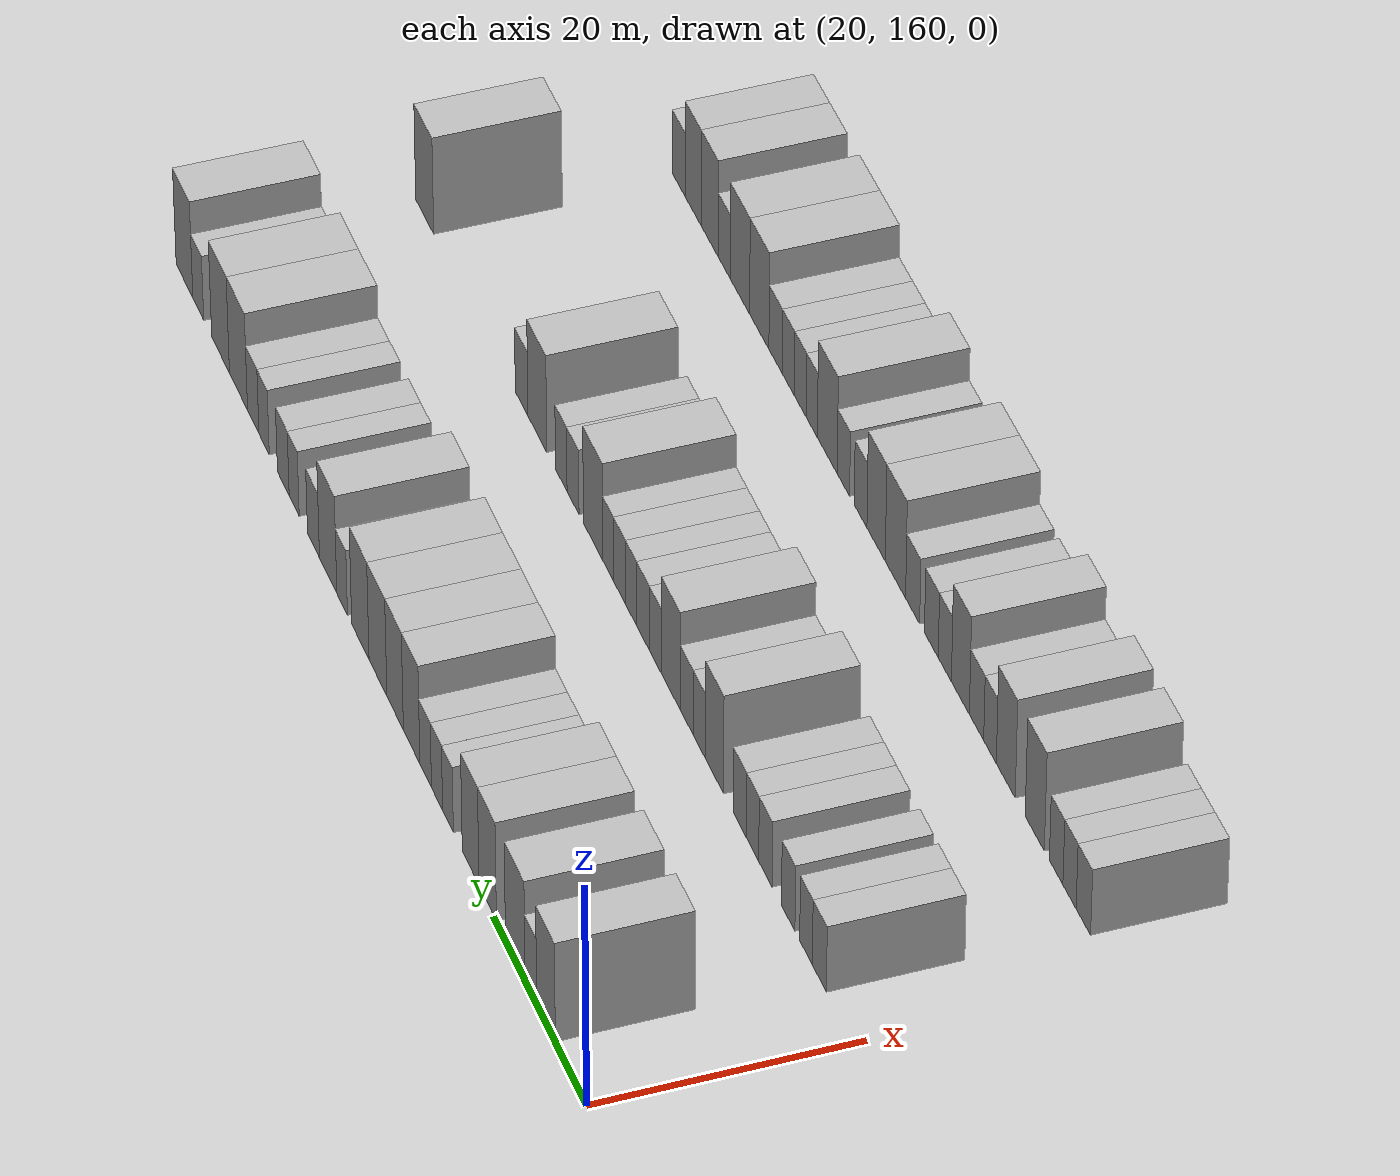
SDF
<sdf version="1.6">
 <world name="default">
  <model name="building_133">
   <static>1</static>
   <pose>25.0000 168.7164 0 0.000000 0.000000 0.000000</pose>
   <link name="link">
    <pose>0 0 4.50 0 0 0</pose>
    <collision name="collision"><geometry><box><size>10.0000 4.0114 9.0000</size></box></geometry></collision>
    <visual name="visual">
     <cast_shadows>0</cast_shadows>
     <geometry><box><size>10.0000 4.0114 9.0000</size></box></geometry>
     <material>
      <script>
       <uri>model://HANNAS_wall/materials/scripts</uri>
       <uri>model://HANNAS_wall/materials/textures</uri>
       <name>vrc/HANNAS_wall</name>
      </script>
     </material>
    </visual>
   </link>
  </model>
  <model name="building_134">
   <static>1</static>
   <pose>25.0000 171.9844 0 0.000000 0.000000 0.000000</pose>
   <link name="link">
    <pose>0 0 3.00 0 0 0</pose>
    <collision name="collision"><geometry><box><size>10.0000 2.5245 6.0000</size></box></geometry></collision>
    <visual name="visual">
     <cast_shadows>0</cast_shadows>
     <geometry><box><size>10.0000 2.5245 6.0000</size></box></geometry>
     <material>
      <script>
       <uri>model://HANNAS_wall/materials/scripts</uri>
       <uri>model://HANNAS_wall/materials/textures</uri>
       <name>vrc/HANNAS_wall</name>
      </script>
     </material>
    </visual>
   </link>
  </model>
  <model name="building_135">
   <static>1</static>
   <pose>25.0000 175.3926 0 0.000000 0.000000 0.000000</pose>
   <link name="link">
    <pose>0 0 4.50 0 0 0</pose>
    <collision name="collision"><geometry><box><size>10.0000 4.2920 9.0000</size></box></geometry></collision>
    <visual name="visual">
     <cast_shadows>0</cast_shadows>
     <geometry><box><size>10.0000 4.2920 9.0000</size></box></geometry>
     <material>
      <script>
       <uri>model://HANNAS_wall/materials/scripts</uri>
       <uri>model://HANNAS_wall/materials/textures</uri>
       <name>vrc/HANNAS_wall</name>
      </script>
     </material>
    </visual>
   </link>
  </model>
  <model name="building_136">
   <static>1</static>
   <pose>25.0000 181.4640 0 0.000000 0.000000 0.000000</pose>
   <link name="link">
    <pose>0 0 4.50 0 0 0</pose>
    <collision name="collision"><geometry><box><size>10.0000 3.8508 9.0000</size></box></geometry></collision>
    <visual name="visual">
     <cast_shadows>0</cast_shadows>
     <geometry><box><size>10.0000 3.8508 9.0000</size></box></geometry>
     <material>
      <script>
       <uri>model://HANNAS_wall/materials/scripts</uri>
       <uri>model://HANNAS_wall/materials/textures</uri>
       <name>vrc/HANNAS_wall</name>
      </script>
     </material>
    </visual>
   </link>
  </model>
  <model name="building_137">
   <static>1</static>
   <pose>25.0000 185.2584 0 0.000000 0.000000 0.000000</pose>
   <link name="link">
    <pose>0 0 4.50 0 0 0</pose>
    <collision name="collision"><geometry><box><size>10.0000 3.7382 9.0000</size></box></geometry></collision>
    <visual name="visual">
     <cast_shadows>0</cast_shadows>
     <geometry><box><size>10.0000 3.7382 9.0000</size></box></geometry>
     <material>
      <script>
       <uri>model://HANNAS_wall/materials/scripts</uri>
       <uri>model://HANNAS_wall/materials/textures</uri>
       <name>vrc/HANNAS_wall</name>
      </script>
     </material>
    </visual>
   </link>
  </model>
  <model name="building_138">
   <static>1</static>
   <pose>25.0000 190.3357 0 0.000000 0.000000 0.000000</pose>
   <link name="link">
    <pose>0 0 3.00 0 0 0</pose>
    <collision name="collision"><geometry><box><size>10.0000 2.4163 6.0000</size></box></geometry></collision>
    <visual name="visual">
     <cast_shadows>0</cast_shadows>
     <geometry><box><size>10.0000 2.4163 6.0000</size></box></geometry>
     <material>
      <script>
       <uri>model://HANNAS_wall/materials/scripts</uri>
       <uri>model://HANNAS_wall/materials/textures</uri>
       <name>vrc/HANNAS_wall</name>
      </script>
     </material>
    </visual>
   </link>
  </model>
  <model name="building_139">
   <static>1</static>
   <pose>25.0000 192.8050 0 0.000000 0.000000 0.000000</pose>
   <link name="link">
    <pose>0 0 3.00 0 0 0</pose>
    <collision name="collision"><geometry><box><size>10.0000 2.5221 6.0000</size></box></geometry></collision>
    <visual name="visual">
     <cast_shadows>0</cast_shadows>
     <geometry><box><size>10.0000 2.5221 6.0000</size></box></geometry>
     <material>
      <script>
       <uri>model://HANNAS_wall/materials/scripts</uri>
       <uri>model://HANNAS_wall/materials/textures</uri>
       <name>vrc/HANNAS_wall</name>
      </script>
     </material>
    </visual>
   </link>
  </model>
  <model name="building_140">
   <static>1</static>
   <pose>25.0000 195.3795 0 0.000000 0.000000 0.000000</pose>
   <link name="link">
    <pose>0 0 3.00 0 0 0</pose>
    <collision name="collision"><geometry><box><size>10.0000 2.6270 6.0000</size></box></geometry></collision>
    <visual name="visual">
     <cast_shadows>0</cast_shadows>
     <geometry><box><size>10.0000 2.6270 6.0000</size></box></geometry>
     <material>
      <script>
       <uri>model://HANNAS_wall/materials/scripts</uri>
       <uri>model://HANNAS_wall/materials/textures</uri>
       <name>vrc/HANNAS_wall</name>
      </script>
     </material>
    </visual>
   </link>
  </model>
  <model name="building_141">
   <static>1</static>
   <pose>25.0000 198.5831 0 0.000000 0.000000 0.000000</pose>
   <link name="link">
    <pose>0 0 4.50 0 0 0</pose>
    <collision name="collision"><geometry><box><size>10.0000 3.7802 9.0000</size></box></geometry></collision>
    <visual name="visual">
     <cast_shadows>0</cast_shadows>
     <geometry><box><size>10.0000 3.7802 9.0000</size></box></geometry>
     <material>
      <script>
       <uri>model://HANNAS_wall/materials/scripts</uri>
       <uri>model://HANNAS_wall/materials/textures</uri>
       <name>vrc/HANNAS_wall</name>
      </script>
     </material>
    </visual>
   </link>
  </model>
  <model name="building_142">
   <static>1</static>
   <pose>25.0000 202.3733 0 0.000000 0.000000 0.000000</pose>
   <link name="link">
    <pose>0 0 4.50 0 0 0</pose>
    <collision name="collision"><geometry><box><size>10.0000 3.8001 9.0000</size></box></geometry></collision>
    <visual name="visual">
     <cast_shadows>0</cast_shadows>
     <geometry><box><size>10.0000 3.8001 9.0000</size></box></geometry>
     <material>
      <script>
       <uri>model://HANNAS_wall/materials/scripts</uri>
       <uri>model://HANNAS_wall/materials/textures</uri>
       <name>vrc/HANNAS_wall</name>
      </script>
     </material>
    </visual>
   </link>
  </model>
  <model name="building_143">
   <static>1</static>
   <pose>25.0000 206.3467 0 0.000000 0.000000 0.000000</pose>
   <link name="link">
    <pose>0 0 4.50 0 0 0</pose>
    <collision name="collision"><geometry><box><size>10.0000 4.1468 9.0000</size></box></geometry></collision>
    <visual name="visual">
     <cast_shadows>0</cast_shadows>
     <geometry><box><size>10.0000 4.1468 9.0000</size></box></geometry>
     <material>
      <script>
       <uri>model://HANNAS_wall/materials/scripts</uri>
       <uri>model://HANNAS_wall/materials/textures</uri>
       <name>vrc/HANNAS_wall</name>
      </script>
     </material>
    </visual>
   </link>
  </model>
  <model name="building_144">
   <static>1</static>
   <pose>25.0000 210.4505 0 0.000000 0.000000 0.000000</pose>
   <link name="link">
    <pose>0 0 4.50 0 0 0</pose>
    <collision name="collision"><geometry><box><size>10.0000 4.0608 9.0000</size></box></geometry></collision>
    <visual name="visual">
     <cast_shadows>0</cast_shadows>
     <geometry><box><size>10.0000 4.0608 9.0000</size></box></geometry>
     <material>
      <script>
       <uri>model://HANNAS_wall/materials/scripts</uri>
       <uri>model://HANNAS_wall/materials/textures</uri>
       <name>vrc/HANNAS_wall</name>
      </script>
     </material>
    </visual>
   </link>
  </model>
  <model name="building_145">
   <static>1</static>
   <pose>25.0000 214.7290 0 0.000000 0.000000 0.000000</pose>
   <link name="link">
    <pose>0 0 3.00 0 0 0</pose>
    <collision name="collision"><geometry><box><size>10.0000 2.4961 6.0000</size></box></geometry></collision>
    <visual name="visual">
     <cast_shadows>0</cast_shadows>
     <geometry><box><size>10.0000 2.4961 6.0000</size></box></geometry>
     <material>
      <script>
       <uri>model://HANNAS_wall/materials/scripts</uri>
       <uri>model://HANNAS_wall/materials/textures</uri>
       <name>vrc/HANNAS_wall</name>
      </script>
     </material>
    </visual>
   </link>
  </model>
  <model name="building_146">
   <static>1</static>
   <pose>25.0000 218.0418 0 0.000000 0.000000 0.000000</pose>
   <link name="link">
    <pose>0 0 4.50 0 0 0</pose>
    <collision name="collision"><geometry><box><size>10.0000 4.1295 9.0000</size></box></geometry></collision>
    <visual name="visual">
     <cast_shadows>0</cast_shadows>
     <geometry><box><size>10.0000 4.1295 9.0000</size></box></geometry>
     <material>
      <script>
       <uri>model://HANNAS_wall/materials/scripts</uri>
       <uri>model://HANNAS_wall/materials/textures</uri>
       <name>vrc/HANNAS_wall</name>
      </script>
     </material>
    </visual>
   </link>
  </model>
  <model name="building_147">
   <static>1</static>
   <pose>25.0000 221.5386 0 0.000000 0.000000 0.000000</pose>
   <link name="link">
    <pose>0 0 3.00 0 0 0</pose>
    <collision name="collision"><geometry><box><size>10.0000 2.8642 6.0000</size></box></geometry></collision>
    <visual name="visual">
     <cast_shadows>0</cast_shadows>
     <geometry><box><size>10.0000 2.8642 6.0000</size></box></geometry>
     <material>
      <script>
       <uri>model://HANNAS_wall/materials/scripts</uri>
       <uri>model://HANNAS_wall/materials/textures</uri>
       <name>vrc/HANNAS_wall</name>
      </script>
     </material>
    </visual>
   </link>
  </model>
  <model name="building_148">
   <static>1</static>
   <pose>25.0000 226.1761 0 0.000000 0.000000 0.000000</pose>
   <link name="link">
    <pose>0 0 3.00 0 0 0</pose>
    <collision name="collision"><geometry><box><size>10.0000 2.4108 6.0000</size></box></geometry></collision>
    <visual name="visual">
     <cast_shadows>0</cast_shadows>
     <geometry><box><size>10.0000 2.4108 6.0000</size></box></geometry>
     <material>
      <script>
       <uri>model://HANNAS_wall/materials/scripts</uri>
       <uri>model://HANNAS_wall/materials/textures</uri>
       <name>vrc/HANNAS_wall</name>
      </script>
     </material>
    </visual>
   </link>
  </model>
  <model name="building_149">
   <static>1</static>
   <pose>25.0000 228.7997 0 0.000000 0.000000 0.000000</pose>
   <link name="link">
    <pose>0 0 3.00 0 0 0</pose>
    <collision name="collision"><geometry><box><size>10.0000 2.8364 6.0000</size></box></geometry></collision>
    <visual name="visual">
     <cast_shadows>0</cast_shadows>
     <geometry><box><size>10.0000 2.8364 6.0000</size></box></geometry>
     <material>
      <script>
       <uri>model://HANNAS_wall/materials/scripts</uri>
       <uri>model://HANNAS_wall/materials/textures</uri>
       <name>vrc/HANNAS_wall</name>
      </script>
     </material>
    </visual>
   </link>
  </model>
  <model name="building_150">
   <static>1</static>
   <pose>25.0000 233.4773 0 0.000000 0.000000 0.000000</pose>
   <link name="link">
    <pose>0 0 3.00 0 0 0</pose>
    <collision name="collision"><geometry><box><size>10.0000 2.5187 6.0000</size></box></geometry></collision>
    <visual name="visual">
     <cast_shadows>0</cast_shadows>
     <geometry><box><size>10.0000 2.5187 6.0000</size></box></geometry>
     <material>
      <script>
       <uri>model://HANNAS_wall/materials/scripts</uri>
       <uri>model://HANNAS_wall/materials/textures</uri>
       <name>vrc/HANNAS_wall</name>
      </script>
     </material>
    </visual>
   </link>
  </model>
  <model name="building_151">
   <static>1</static>
   <pose>25.0000 236.1362 0 0.000000 0.000000 0.000000</pose>
   <link name="link">
    <pose>0 0 3.00 0 0 0</pose>
    <collision name="collision"><geometry><box><size>10.0000 2.7992 6.0000</size></box></geometry></collision>
    <visual name="visual">
     <cast_shadows>0</cast_shadows>
     <geometry><box><size>10.0000 2.7992 6.0000</size></box></geometry>
     <material>
      <script>
       <uri>model://HANNAS_wall/materials/scripts</uri>
       <uri>model://HANNAS_wall/materials/textures</uri>
       <name>vrc/HANNAS_wall</name>
      </script>
     </material>
    </visual>
   </link>
  </model>
  <model name="building_152">
   <static>1</static>
   <pose>25.0000 239.7703 0 0.000000 0.000000 0.000000</pose>
   <link name="link">
    <pose>0 0 4.50 0 0 0</pose>
    <collision name="collision"><geometry><box><size>10.0000 4.4690 9.0000</size></box></geometry></collision>
    <visual name="visual">
     <cast_shadows>0</cast_shadows>
     <geometry><box><size>10.0000 4.4690 9.0000</size></box></geometry>
     <material>
      <script>
       <uri>model://HANNAS_wall/materials/scripts</uri>
       <uri>model://HANNAS_wall/materials/textures</uri>
       <name>vrc/HANNAS_wall</name>
      </script>
     </material>
    </visual>
   </link>
  </model>
  <model name="building_153">
   <static>1</static>
   <pose>25.0000 244.2162 0 0.000000 0.000000 0.000000</pose>
   <link name="link">
    <pose>0 0 4.50 0 0 0</pose>
    <collision name="collision"><geometry><box><size>10.0000 4.4228 9.0000</size></box></geometry></collision>
    <visual name="visual">
     <cast_shadows>0</cast_shadows>
     <geometry><box><size>10.0000 4.4228 9.0000</size></box></geometry>
     <material>
      <script>
       <uri>model://HANNAS_wall/materials/scripts</uri>
       <uri>model://HANNAS_wall/materials/textures</uri>
       <name>vrc/HANNAS_wall</name>
      </script>
     </material>
    </visual>
   </link>
  </model>
  <model name="building_154">
   <static>1</static>
   <pose>25.0000 249.7953 0 0.000000 0.000000 0.000000</pose>
   <link name="link">
    <pose>0 0 3.00 0 0 0</pose>
    <collision name="collision"><geometry><box><size>10.0000 2.7353 6.0000</size></box></geometry></collision>
    <visual name="visual">
     <cast_shadows>0</cast_shadows>
     <geometry><box><size>10.0000 2.7353 6.0000</size></box></geometry>
     <material>
      <script>
       <uri>model://HANNAS_wall/materials/scripts</uri>
       <uri>model://HANNAS_wall/materials/textures</uri>
       <name>vrc/HANNAS_wall</name>
      </script>
     </material>
    </visual>
   </link>
  </model>
  <model name="building_155">
   <static>1</static>
   <pose>25.0000 253.2714 0 0.000000 0.000000 0.000000</pose>
   <link name="link">
    <pose>0 0 4.50 0 0 0</pose>
    <collision name="collision"><geometry><box><size>10.0000 4.2170 9.0000</size></box></geometry></collision>
    <visual name="visual">
     <cast_shadows>0</cast_shadows>
     <geometry><box><size>10.0000 4.2170 9.0000</size></box></geometry>
     <material>
      <script>
       <uri>model://HANNAS_wall/materials/scripts</uri>
       <uri>model://HANNAS_wall/materials/textures</uri>
       <name>vrc/HANNAS_wall</name>
      </script>
     </material>
    </visual>
   </link>
  </model>
  <model name="building_308">
   <static>1</static>
   <pose>44.0000 166.8958 0 0.000000 0.000000 0.000000</pose>
   <link name="link">
    <pose>0 0 3.00 0 0 0</pose>
    <collision name="collision"><geometry><box><size>10.0000 2.8729 6.0000</size></box></geometry></collision>
    <visual name="visual">
     <cast_shadows>0</cast_shadows>
     <geometry><box><size>10.0000 2.8729 6.0000</size></box></geometry>
     <material>
      <script>
       <uri>model://HANNAS_wall/materials/scripts</uri>
       <uri>model://HANNAS_wall/materials/textures</uri>
       <name>vrc/HANNAS_wall</name>
      </script>
     </material>
    </visual>
   </link>
  </model>
  <model name="building_309">
   <static>1</static>
   <pose>44.0000 169.6414 0 0.000000 0.000000 0.000000</pose>
   <link name="link">
    <pose>0 0 3.00 0 0 0</pose>
    <collision name="collision"><geometry><box><size>10.0000 2.6182 6.0000</size></box></geometry></collision>
    <visual name="visual">
     <cast_shadows>0</cast_shadows>
     <geometry><box><size>10.0000 2.6182 6.0000</size></box></geometry>
     <material>
      <script>
       <uri>model://HANNAS_wall/materials/scripts</uri>
       <uri>model://HANNAS_wall/materials/textures</uri>
       <name>vrc/HANNAS_wall</name>
      </script>
     </material>
    </visual>
   </link>
  </model>
  <model name="building_310">
   <static>1</static>
   <pose>44.0000 173.3304 0 0.000000 0.000000 0.000000</pose>
   <link name="link">
    <pose>0 0 3.00 0 0 0</pose>
    <collision name="collision"><geometry><box><size>10.0000 2.7597 6.0000</size></box></geometry></collision>
    <visual name="visual">
     <cast_shadows>0</cast_shadows>
     <geometry><box><size>10.0000 2.7597 6.0000</size></box></geometry>
     <material>
      <script>
       <uri>model://HANNAS_wall/materials/scripts</uri>
       <uri>model://HANNAS_wall/materials/textures</uri>
       <name>vrc/HANNAS_wall</name>
      </script>
     </material>
    </visual>
   </link>
  </model>
  <model name="building_311">
   <static>1</static>
   <pose>44.0000 178.0972 0 0.000000 0.000000 0.000000</pose>
   <link name="link">
    <pose>0 0 3.00 0 0 0</pose>
    <collision name="collision"><geometry><box><size>10.0000 2.7738 6.0000</size></box></geometry></collision>
    <visual name="visual">
     <cast_shadows>0</cast_shadows>
     <geometry><box><size>10.0000 2.7738 6.0000</size></box></geometry>
     <material>
      <script>
       <uri>model://HANNAS_wall/materials/scripts</uri>
       <uri>model://HANNAS_wall/materials/textures</uri>
       <name>vrc/HANNAS_wall</name>
      </script>
     </material>
    </visual>
   </link>
  </model>
  <model name="building_312">
   <static>1</static>
   <pose>44.0000 180.7755 0 0.000000 0.000000 0.000000</pose>
   <link name="link">
    <pose>0 0 3.00 0 0 0</pose>
    <collision name="collision"><geometry><box><size>10.0000 2.5829 6.0000</size></box></geometry></collision>
    <visual name="visual">
     <cast_shadows>0</cast_shadows>
     <geometry><box><size>10.0000 2.5829 6.0000</size></box></geometry>
     <material>
      <script>
       <uri>model://HANNAS_wall/materials/scripts</uri>
       <uri>model://HANNAS_wall/materials/textures</uri>
       <name>vrc/HANNAS_wall</name>
      </script>
     </material>
    </visual>
   </link>
  </model>
  <model name="building_313">
   <static>1</static>
   <pose>44.0000 183.4873 0 0.000000 0.000000 0.000000</pose>
   <link name="link">
    <pose>0 0 3.00 0 0 0</pose>
    <collision name="collision"><geometry><box><size>10.0000 2.8407 6.0000</size></box></geometry></collision>
    <visual name="visual">
     <cast_shadows>0</cast_shadows>
     <geometry><box><size>10.0000 2.8407 6.0000</size></box></geometry>
     <material>
      <script>
       <uri>model://HANNAS_wall/materials/scripts</uri>
       <uri>model://HANNAS_wall/materials/textures</uri>
       <name>vrc/HANNAS_wall</name>
      </script>
     </material>
    </visual>
   </link>
  </model>
  <model name="building_314">
   <static>1</static>
   <pose>44.0000 188.8247 0 0.000000 0.000000 0.000000</pose>
   <link name="link">
    <pose>0 0 4.50 0 0 0</pose>
    <collision name="collision"><geometry><box><size>10.0000 3.8340 9.0000</size></box></geometry></collision>
    <visual name="visual">
     <cast_shadows>0</cast_shadows>
     <geometry><box><size>10.0000 3.8340 9.0000</size></box></geometry>
     <material>
      <script>
       <uri>model://HANNAS_wall/materials/scripts</uri>
       <uri>model://HANNAS_wall/materials/textures</uri>
       <name>vrc/HANNAS_wall</name>
      </script>
     </material>
    </visual>
   </link>
  </model>
  <model name="building_315">
   <static>1</static>
   <pose>44.0000 192.0811 0 0.000000 0.000000 0.000000</pose>
   <link name="link">
    <pose>0 0 3.00 0 0 0</pose>
    <collision name="collision"><geometry><box><size>10.0000 2.6788 6.0000</size></box></geometry></collision>
    <visual name="visual">
     <cast_shadows>0</cast_shadows>
     <geometry><box><size>10.0000 2.6788 6.0000</size></box></geometry>
     <material>
      <script>
       <uri>model://HANNAS_wall/materials/scripts</uri>
       <uri>model://HANNAS_wall/materials/textures</uri>
       <name>vrc/HANNAS_wall</name>
      </script>
     </material>
    </visual>
   </link>
  </model>
  <model name="building_316">
   <static>1</static>
   <pose>44.0000 194.8253 0 0.000000 0.000000 0.000000</pose>
   <link name="link">
    <pose>0 0 3.00 0 0 0</pose>
    <collision name="collision"><geometry><box><size>10.0000 2.8096 6.0000</size></box></geometry></collision>
    <visual name="visual">
     <cast_shadows>0</cast_shadows>
     <geometry><box><size>10.0000 2.8096 6.0000</size></box></geometry>
     <material>
      <script>
       <uri>model://HANNAS_wall/materials/scripts</uri>
       <uri>model://HANNAS_wall/materials/textures</uri>
       <name>vrc/HANNAS_wall</name>
      </script>
     </material>
    </visual>
   </link>
  </model>
  <model name="building_317">
   <static>1</static>
   <pose>44.0000 198.2638 0 0.000000 0.000000 0.000000</pose>
   <link name="link">
    <pose>0 0 4.50 0 0 0</pose>
    <collision name="collision"><geometry><box><size>10.0000 4.0675 9.0000</size></box></geometry></collision>
    <visual name="visual">
     <cast_shadows>0</cast_shadows>
     <geometry><box><size>10.0000 4.0675 9.0000</size></box></geometry>
     <material>
      <script>
       <uri>model://HANNAS_wall/materials/scripts</uri>
       <uri>model://HANNAS_wall/materials/textures</uri>
       <name>vrc/HANNAS_wall</name>
      </script>
     </material>
    </visual>
   </link>
  </model>
  <model name="building_318">
   <static>1</static>
   <pose>44.0000 201.6154 0 0.000000 0.000000 0.000000</pose>
   <link name="link">
    <pose>0 0 3.00 0 0 0</pose>
    <collision name="collision"><geometry><box><size>10.0000 2.6357 6.0000</size></box></geometry></collision>
    <visual name="visual">
     <cast_shadows>0</cast_shadows>
     <geometry><box><size>10.0000 2.6357 6.0000</size></box></geometry>
     <material>
      <script>
       <uri>model://HANNAS_wall/materials/scripts</uri>
       <uri>model://HANNAS_wall/materials/textures</uri>
       <name>vrc/HANNAS_wall</name>
      </script>
     </material>
    </visual>
   </link>
  </model>
  <model name="building_319">
   <static>1</static>
   <pose>44.0000 204.3480 0 0.000000 0.000000 0.000000</pose>
   <link name="link">
    <pose>0 0 3.00 0 0 0</pose>
    <collision name="collision"><geometry><box><size>10.0000 2.8294 6.0000</size></box></geometry></collision>
    <visual name="visual">
     <cast_shadows>0</cast_shadows>
     <geometry><box><size>10.0000 2.8294 6.0000</size></box></geometry>
     <material>
      <script>
       <uri>model://HANNAS_wall/materials/scripts</uri>
       <uri>model://HANNAS_wall/materials/textures</uri>
       <name>vrc/HANNAS_wall</name>
      </script>
     </material>
    </visual>
   </link>
  </model>
  <model name="building_320">
   <static>1</static>
   <pose>44.0000 206.9735 0 0.000000 0.000000 0.000000</pose>
   <link name="link">
    <pose>0 0 3.00 0 0 0</pose>
    <collision name="collision"><geometry><box><size>10.0000 2.4216 6.0000</size></box></geometry></collision>
    <visual name="visual">
     <cast_shadows>0</cast_shadows>
     <geometry><box><size>10.0000 2.4216 6.0000</size></box></geometry>
     <material>
      <script>
       <uri>model://HANNAS_wall/materials/scripts</uri>
       <uri>model://HANNAS_wall/materials/textures</uri>
       <name>vrc/HANNAS_wall</name>
      </script>
     </material>
    </visual>
   </link>
  </model>
  <model name="building_321">
   <static>1</static>
   <pose>44.0000 209.5310 0 0.000000 0.000000 0.000000</pose>
   <link name="link">
    <pose>0 0 3.00 0 0 0</pose>
    <collision name="collision"><geometry><box><size>10.0000 2.6935 6.0000</size></box></geometry></collision>
    <visual name="visual">
     <cast_shadows>0</cast_shadows>
     <geometry><box><size>10.0000 2.6935 6.0000</size></box></geometry>
     <material>
      <script>
       <uri>model://HANNAS_wall/materials/scripts</uri>
       <uri>model://HANNAS_wall/materials/textures</uri>
       <name>vrc/HANNAS_wall</name>
      </script>
     </material>
    </visual>
   </link>
  </model>
  <model name="building_322">
   <static>1</static>
   <pose>44.0000 212.0808 0 0.000000 0.000000 0.000000</pose>
   <link name="link">
    <pose>0 0 3.00 0 0 0</pose>
    <collision name="collision"><geometry><box><size>10.0000 2.4060 6.0000</size></box></geometry></collision>
    <visual name="visual">
     <cast_shadows>0</cast_shadows>
     <geometry><box><size>10.0000 2.4060 6.0000</size></box></geometry>
     <material>
      <script>
       <uri>model://HANNAS_wall/materials/scripts</uri>
       <uri>model://HANNAS_wall/materials/textures</uri>
       <name>vrc/HANNAS_wall</name>
      </script>
     </material>
    </visual>
   </link>
  </model>
  <model name="building_323">
   <static>1</static>
   <pose>44.0000 215.4780 0 0.000000 0.000000 0.000000</pose>
   <link name="link">
    <pose>0 0 4.50 0 0 0</pose>
    <collision name="collision"><geometry><box><size>10.0000 4.3884 9.0000</size></box></geometry></collision>
    <visual name="visual">
     <cast_shadows>0</cast_shadows>
     <geometry><box><size>10.0000 4.3884 9.0000</size></box></geometry>
     <material>
      <script>
       <uri>model://HANNAS_wall/materials/scripts</uri>
       <uri>model://HANNAS_wall/materials/textures</uri>
       <name>vrc/HANNAS_wall</name>
      </script>
     </material>
    </visual>
   </link>
  </model>
  <model name="building_324">
   <static>1</static>
   <pose>44.0000 220.0338 0 0.000000 0.000000 0.000000</pose>
   <link name="link">
    <pose>0 0 3.00 0 0 0</pose>
    <collision name="collision"><geometry><box><size>10.0000 2.7232 6.0000</size></box></geometry></collision>
    <visual name="visual">
     <cast_shadows>0</cast_shadows>
     <geometry><box><size>10.0000 2.7232 6.0000</size></box></geometry>
     <material>
      <script>
       <uri>model://HANNAS_wall/materials/scripts</uri>
       <uri>model://HANNAS_wall/materials/textures</uri>
       <name>vrc/HANNAS_wall</name>
      </script>
     </material>
    </visual>
   </link>
  </model>
  <model name="building_325">
   <static>1</static>
   <pose>44.0000 222.7101 0 0.000000 0.000000 0.000000</pose>
   <link name="link">
    <pose>0 0 3.00 0 0 0</pose>
    <collision name="collision"><geometry><box><size>10.0000 2.6293 6.0000</size></box></geometry></collision>
    <visual name="visual">
     <cast_shadows>0</cast_shadows>
     <geometry><box><size>10.0000 2.6293 6.0000</size></box></geometry>
     <material>
      <script>
       <uri>model://HANNAS_wall/materials/scripts</uri>
       <uri>model://HANNAS_wall/materials/textures</uri>
       <name>vrc/HANNAS_wall</name>
      </script>
     </material>
    </visual>
   </link>
  </model>
  <model name="building_326">
   <static>1</static>
   <pose>44.0000 228.1924 0 0.000000 0.000000 0.000000</pose>
   <link name="link">
    <pose>0 0 4.50 0 0 0</pose>
    <collision name="collision"><geometry><box><size>10.0000 4.3352 9.0000</size></box></geometry></collision>
    <visual name="visual">
     <cast_shadows>0</cast_shadows>
     <geometry><box><size>10.0000 4.3352 9.0000</size></box></geometry>
     <material>
      <script>
       <uri>model://HANNAS_wall/materials/scripts</uri>
       <uri>model://HANNAS_wall/materials/textures</uri>
       <name>vrc/HANNAS_wall</name>
      </script>
     </material>
    </visual>
   </link>
  </model>
  <model name="building_327">
   <static>1</static>
   <pose>44.0000 231.8220 0 0.000000 0.000000 0.000000</pose>
   <link name="link">
    <pose>0 0 3.00 0 0 0</pose>
    <collision name="collision"><geometry><box><size>10.0000 2.9240 6.0000</size></box></geometry></collision>
    <visual name="visual">
     <cast_shadows>0</cast_shadows>
     <geometry><box><size>10.0000 2.9240 6.0000</size></box></geometry>
     <material>
      <script>
       <uri>model://HANNAS_wall/materials/scripts</uri>
       <uri>model://HANNAS_wall/materials/textures</uri>
       <name>vrc/HANNAS_wall</name>
      </script>
     </material>
    </visual>
   </link>
  </model>
  <model name="building_328">
   <static>1</static>
   <pose>44.0000 254.7735 0 0.000000 0.000000 0.000000</pose>
   <link name="link">
    <pose>0 0 4.50 0 0 0</pose>
    <collision name="collision"><geometry><box><size>10.0000 4.3264 9.0000</size></box></geometry></collision>
    <visual name="visual">
     <cast_shadows>0</cast_shadows>
     <geometry><box><size>10.0000 4.3264 9.0000</size></box></geometry>
     <material>
      <script>
       <uri>model://HANNAS_wall/materials/scripts</uri>
       <uri>model://HANNAS_wall/materials/textures</uri>
       <name>vrc/HANNAS_wall</name>
      </script>
     </material>
    </visual>
   </link>
  </model>
  <model name="building_478">
   <static>1</static>
   <pose>63.0000 166.4580 0 0.000000 0.000000 0.000000</pose>
   <link name="link">
    <pose>0 0 3.00 0 0 0</pose>
    <collision name="collision"><geometry><box><size>10.0000 2.8301 6.0000</size></box></geometry></collision>
    <visual name="visual">
     <cast_shadows>0</cast_shadows>
     <geometry><box><size>10.0000 2.8301 6.0000</size></box></geometry>
     <material>
      <script>
       <uri>model://HANNAS_wall/materials/scripts</uri>
       <uri>model://HANNAS_wall/materials/textures</uri>
       <name>vrc/HANNAS_wall</name>
      </script>
     </material>
    </visual>
   </link>
  </model>
  <model name="building_479">
   <static>1</static>
   <pose>63.0000 169.1736 0 0.000000 0.000000 0.000000</pose>
   <link name="link">
    <pose>0 0 3.00 0 0 0</pose>
    <collision name="collision"><geometry><box><size>10.0000 2.6010 6.0000</size></box></geometry></collision>
    <visual name="visual">
     <cast_shadows>0</cast_shadows>
     <geometry><box><size>10.0000 2.6010 6.0000</size></box></geometry>
     <material>
      <script>
       <uri>model://HANNAS_wall/materials/scripts</uri>
       <uri>model://HANNAS_wall/materials/textures</uri>
       <name>vrc/HANNAS_wall</name>
      </script>
     </material>
    </visual>
   </link>
  </model>
  <model name="building_480">
   <static>1</static>
   <pose>63.0000 171.8097 0 0.000000 0.000000 0.000000</pose>
   <link name="link">
    <pose>0 0 3.00 0 0 0</pose>
    <collision name="collision"><geometry><box><size>10.0000 2.6711 6.0000</size></box></geometry></collision>
    <visual name="visual">
     <cast_shadows>0</cast_shadows>
     <geometry><box><size>10.0000 2.6711 6.0000</size></box></geometry>
     <material>
      <script>
       <uri>model://HANNAS_wall/materials/scripts</uri>
       <uri>model://HANNAS_wall/materials/textures</uri>
       <name>vrc/HANNAS_wall</name>
      </script>
     </material>
    </visual>
   </link>
  </model>
  <model name="building_481">
   <static>1</static>
   <pose>63.0000 176.0574 0 0.000000 0.000000 0.000000</pose>
   <link name="link">
    <pose>0 0 4.50 0 0 0</pose>
    <collision name="collision"><geometry><box><size>10.0000 3.8244 9.0000</size></box></geometry></collision>
    <visual name="visual">
     <cast_shadows>0</cast_shadows>
     <geometry><box><size>10.0000 3.8244 9.0000</size></box></geometry>
     <material>
      <script>
       <uri>model://HANNAS_wall/materials/scripts</uri>
       <uri>model://HANNAS_wall/materials/textures</uri>
       <name>vrc/HANNAS_wall</name>
      </script>
     </material>
    </visual>
   </link>
  </model>
  <model name="building_482">
   <static>1</static>
   <pose>63.0000 181.8731 0 0.000000 0.000000 0.000000</pose>
   <link name="link">
    <pose>0 0 4.50 0 0 0</pose>
    <collision name="collision"><geometry><box><size>10.0000 3.8069 9.0000</size></box></geometry></collision>
    <visual name="visual">
     <cast_shadows>0</cast_shadows>
     <geometry><box><size>10.0000 3.8069 9.0000</size></box></geometry>
     <material>
      <script>
       <uri>model://HANNAS_wall/materials/scripts</uri>
       <uri>model://HANNAS_wall/materials/textures</uri>
       <name>vrc/HANNAS_wall</name>
      </script>
     </material>
    </visual>
   </link>
  </model>
  <model name="building_483">
   <static>1</static>
   <pose>63.0000 185.0580 0 0.000000 0.000000 0.000000</pose>
   <link name="link">
    <pose>0 0 3.00 0 0 0</pose>
    <collision name="collision"><geometry><box><size>10.0000 2.5628 6.0000</size></box></geometry></collision>
    <visual name="visual">
     <cast_shadows>0</cast_shadows>
     <geometry><box><size>10.0000 2.5628 6.0000</size></box></geometry>
     <material>
      <script>
       <uri>model://HANNAS_wall/materials/scripts</uri>
       <uri>model://HANNAS_wall/materials/textures</uri>
       <name>vrc/HANNAS_wall</name>
      </script>
     </material>
    </visual>
   </link>
  </model>
  <model name="building_484">
   <static>1</static>
   <pose>63.0000 187.8026 0 0.000000 0.000000 0.000000</pose>
   <link name="link">
    <pose>0 0 3.00 0 0 0</pose>
    <collision name="collision"><geometry><box><size>10.0000 2.9264 6.0000</size></box></geometry></collision>
    <visual name="visual">
     <cast_shadows>0</cast_shadows>
     <geometry><box><size>10.0000 2.9264 6.0000</size></box></geometry>
     <material>
      <script>
       <uri>model://HANNAS_wall/materials/scripts</uri>
       <uri>model://HANNAS_wall/materials/textures</uri>
       <name>vrc/HANNAS_wall</name>
      </script>
     </material>
    </visual>
   </link>
  </model>
  <model name="building_485">
   <static>1</static>
   <pose>63.0000 191.1092 0 0.000000 0.000000 0.000000</pose>
   <link name="link">
    <pose>0 0 4.50 0 0 0</pose>
    <collision name="collision"><geometry><box><size>10.0000 3.6867 9.0000</size></box></geometry></collision>
    <visual name="visual">
     <cast_shadows>0</cast_shadows>
     <geometry><box><size>10.0000 3.6867 9.0000</size></box></geometry>
     <material>
      <script>
       <uri>model://HANNAS_wall/materials/scripts</uri>
       <uri>model://HANNAS_wall/materials/textures</uri>
       <name>vrc/HANNAS_wall</name>
      </script>
     </material>
    </visual>
   </link>
  </model>
  <model name="building_486">
   <static>1</static>
   <pose>63.0000 194.3098 0 0.000000 0.000000 0.000000</pose>
   <link name="link">
    <pose>0 0 3.00 0 0 0</pose>
    <collision name="collision"><geometry><box><size>10.0000 2.7145 6.0000</size></box></geometry></collision>
    <visual name="visual">
     <cast_shadows>0</cast_shadows>
     <geometry><box><size>10.0000 2.7145 6.0000</size></box></geometry>
     <material>
      <script>
       <uri>model://HANNAS_wall/materials/scripts</uri>
       <uri>model://HANNAS_wall/materials/textures</uri>
       <name>vrc/HANNAS_wall</name>
      </script>
     </material>
    </visual>
   </link>
  </model>
  <model name="building_487">
   <static>1</static>
   <pose>63.0000 197.0973 0 0.000000 0.000000 0.000000</pose>
   <link name="link">
    <pose>0 0 3.00 0 0 0</pose>
    <collision name="collision"><geometry><box><size>10.0000 2.8607 6.0000</size></box></geometry></collision>
    <visual name="visual">
     <cast_shadows>0</cast_shadows>
     <geometry><box><size>10.0000 2.8607 6.0000</size></box></geometry>
     <material>
      <script>
       <uri>model://HANNAS_wall/materials/scripts</uri>
       <uri>model://HANNAS_wall/materials/textures</uri>
       <name>vrc/HANNAS_wall</name>
      </script>
     </material>
    </visual>
   </link>
  </model>
  <model name="building_488">
   <static>1</static>
   <pose>63.0000 200.9984 0 0.000000 0.000000 0.000000</pose>
   <link name="link">
    <pose>0 0 3.00 0 0 0</pose>
    <collision name="collision"><geometry><box><size>10.0000 2.9415 6.0000</size></box></geometry></collision>
    <visual name="visual">
     <cast_shadows>0</cast_shadows>
     <geometry><box><size>10.0000 2.9415 6.0000</size></box></geometry>
     <material>
      <script>
       <uri>model://HANNAS_wall/materials/scripts</uri>
       <uri>model://HANNAS_wall/materials/textures</uri>
       <name>vrc/HANNAS_wall</name>
      </script>
     </material>
    </visual>
   </link>
  </model>
  <model name="building_489">
   <static>1</static>
   <pose>63.0000 204.6077 0 0.000000 0.000000 0.000000</pose>
   <link name="link">
    <pose>0 0 4.50 0 0 0</pose>
    <collision name="collision"><geometry><box><size>10.0000 4.2771 9.0000</size></box></geometry></collision>
    <visual name="visual">
     <cast_shadows>0</cast_shadows>
     <geometry><box><size>10.0000 4.2771 9.0000</size></box></geometry>
     <material>
      <script>
       <uri>model://HANNAS_wall/materials/scripts</uri>
       <uri>model://HANNAS_wall/materials/textures</uri>
       <name>vrc/HANNAS_wall</name>
      </script>
     </material>
    </visual>
   </link>
  </model>
  <model name="building_490">
   <static>1</static>
   <pose>63.0000 208.6927 0 0.000000 0.000000 0.000000</pose>
   <link name="link">
    <pose>0 0 4.50 0 0 0</pose>
    <collision name="collision"><geometry><box><size>10.0000 3.8929 9.0000</size></box></geometry></collision>
    <visual name="visual">
     <cast_shadows>0</cast_shadows>
     <geometry><box><size>10.0000 3.8929 9.0000</size></box></geometry>
     <material>
      <script>
       <uri>model://HANNAS_wall/materials/scripts</uri>
       <uri>model://HANNAS_wall/materials/textures</uri>
       <name>vrc/HANNAS_wall</name>
      </script>
     </material>
    </visual>
   </link>
  </model>
  <model name="building_491">
   <static>1</static>
   <pose>63.0000 211.9918 0 0.000000 0.000000 0.000000</pose>
   <link name="link">
    <pose>0 0 3.00 0 0 0</pose>
    <collision name="collision"><geometry><box><size>10.0000 2.7054 6.0000</size></box></geometry></collision>
    <visual name="visual">
     <cast_shadows>0</cast_shadows>
     <geometry><box><size>10.0000 2.7054 6.0000</size></box></geometry>
     <material>
      <script>
       <uri>model://HANNAS_wall/materials/scripts</uri>
       <uri>model://HANNAS_wall/materials/textures</uri>
       <name>vrc/HANNAS_wall</name>
      </script>
     </material>
    </visual>
   </link>
  </model>
  <model name="building_492">
   <static>1</static>
   <pose>63.0000 215.6820 0 0.000000 0.000000 0.000000</pose>
   <link name="link">
    <pose>0 0 3.00 0 0 0</pose>
    <collision name="collision"><geometry><box><size>10.0000 2.6751 6.0000</size></box></geometry></collision>
    <visual name="visual">
     <cast_shadows>0</cast_shadows>
     <geometry><box><size>10.0000 2.6751 6.0000</size></box></geometry>
     <material>
      <script>
       <uri>model://HANNAS_wall/materials/scripts</uri>
       <uri>model://HANNAS_wall/materials/textures</uri>
       <name>vrc/HANNAS_wall</name>
      </script>
     </material>
    </visual>
   </link>
  </model>
  <model name="building_493">
   <static>1</static>
   <pose>63.0000 219.1602 0 0.000000 0.000000 0.000000</pose>
   <link name="link">
    <pose>0 0 4.50 0 0 0</pose>
    <collision name="collision"><geometry><box><size>10.0000 4.2812 9.0000</size></box></geometry></collision>
    <visual name="visual">
     <cast_shadows>0</cast_shadows>
     <geometry><box><size>10.0000 4.2812 9.0000</size></box></geometry>
     <material>
      <script>
       <uri>model://HANNAS_wall/materials/scripts</uri>
       <uri>model://HANNAS_wall/materials/textures</uri>
       <name>vrc/HANNAS_wall</name>
      </script>
     </material>
    </visual>
   </link>
  </model>
  <model name="building_494">
   <static>1</static>
   <pose>63.0000 222.5059 0 0.000000 0.000000 0.000000</pose>
   <link name="link">
    <pose>0 0 3.00 0 0 0</pose>
    <collision name="collision"><geometry><box><size>10.0000 2.4100 6.0000</size></box></geometry></collision>
    <visual name="visual">
     <cast_shadows>0</cast_shadows>
     <geometry><box><size>10.0000 2.4100 6.0000</size></box></geometry>
     <material>
      <script>
       <uri>model://HANNAS_wall/materials/scripts</uri>
       <uri>model://HANNAS_wall/materials/textures</uri>
       <name>vrc/HANNAS_wall</name>
      </script>
     </material>
    </visual>
   </link>
  </model>
  <model name="building_495">
   <static>1</static>
   <pose>63.0000 225.0260 0 0.000000 0.000000 0.000000</pose>
   <link name="link">
    <pose>0 0 3.00 0 0 0</pose>
    <collision name="collision"><geometry><box><size>10.0000 2.6302 6.0000</size></box></geometry></collision>
    <visual name="visual">
     <cast_shadows>0</cast_shadows>
     <geometry><box><size>10.0000 2.6302 6.0000</size></box></geometry>
     <material>
      <script>
       <uri>model://HANNAS_wall/materials/scripts</uri>
       <uri>model://HANNAS_wall/materials/textures</uri>
       <name>vrc/HANNAS_wall</name>
      </script>
     </material>
    </visual>
   </link>
  </model>
  <model name="building_496">
   <static>1</static>
   <pose>63.0000 227.6887 0 0.000000 0.000000 0.000000</pose>
   <link name="link">
    <pose>0 0 3.00 0 0 0</pose>
    <collision name="collision"><geometry><box><size>10.0000 2.6953 6.0000</size></box></geometry></collision>
    <visual name="visual">
     <cast_shadows>0</cast_shadows>
     <geometry><box><size>10.0000 2.6953 6.0000</size></box></geometry>
     <material>
      <script>
       <uri>model://HANNAS_wall/materials/scripts</uri>
       <uri>model://HANNAS_wall/materials/textures</uri>
       <name>vrc/HANNAS_wall</name>
      </script>
     </material>
    </visual>
   </link>
  </model>
  <model name="building_497">
   <static>1</static>
   <pose>63.0000 230.4884 0 0.000000 0.000000 0.000000</pose>
   <link name="link">
    <pose>0 0 3.00 0 0 0</pose>
    <collision name="collision"><geometry><box><size>10.0000 2.9043 6.0000</size></box></geometry></collision>
    <visual name="visual">
     <cast_shadows>0</cast_shadows>
     <geometry><box><size>10.0000 2.9043 6.0000</size></box></geometry>
     <material>
      <script>
       <uri>model://HANNAS_wall/materials/scripts</uri>
       <uri>model://HANNAS_wall/materials/textures</uri>
       <name>vrc/HANNAS_wall</name>
      </script>
     </material>
    </visual>
   </link>
  </model>
  <model name="building_498">
   <static>1</static>
   <pose>63.0000 234.0773 0 0.000000 0.000000 0.000000</pose>
   <link name="link">
    <pose>0 0 4.50 0 0 0</pose>
    <collision name="collision"><geometry><box><size>10.0000 4.2733 9.0000</size></box></geometry></collision>
    <visual name="visual">
     <cast_shadows>0</cast_shadows>
     <geometry><box><size>10.0000 4.2733 9.0000</size></box></geometry>
     <material>
      <script>
       <uri>model://HANNAS_wall/materials/scripts</uri>
       <uri>model://HANNAS_wall/materials/textures</uri>
       <name>vrc/HANNAS_wall</name>
      </script>
     </material>
    </visual>
   </link>
  </model>
  <model name="building_499">
   <static>1</static>
   <pose>63.0000 238.4194 0 0.000000 0.000000 0.000000</pose>
   <link name="link">
    <pose>0 0 4.50 0 0 0</pose>
    <collision name="collision"><geometry><box><size>10.0000 4.4108 9.0000</size></box></geometry></collision>
    <visual name="visual">
     <cast_shadows>0</cast_shadows>
     <geometry><box><size>10.0000 4.4108 9.0000</size></box></geometry>
     <material>
      <script>
       <uri>model://HANNAS_wall/materials/scripts</uri>
       <uri>model://HANNAS_wall/materials/textures</uri>
       <name>vrc/HANNAS_wall</name>
      </script>
     </material>
    </visual>
   </link>
  </model>
  <model name="building_500">
   <static>1</static>
   <pose>63.0000 241.9574 0 0.000000 0.000000 0.000000</pose>
   <link name="link">
    <pose>0 0 3.00 0 0 0</pose>
    <collision name="collision"><geometry><box><size>10.0000 2.6653 6.0000</size></box></geometry></collision>
    <visual name="visual">
     <cast_shadows>0</cast_shadows>
     <geometry><box><size>10.0000 2.6653 6.0000</size></box></geometry>
     <material>
      <script>
       <uri>model://HANNAS_wall/materials/scripts</uri>
       <uri>model://HANNAS_wall/materials/textures</uri>
       <name>vrc/HANNAS_wall</name>
      </script>
     </material>
    </visual>
   </link>
  </model>
  <model name="building_501">
   <static>1</static>
   <pose>63.0000 245.2374 0 0.000000 0.000000 0.000000</pose>
   <link name="link">
    <pose>0 0 4.50 0 0 0</pose>
    <collision name="collision"><geometry><box><size>10.0000 3.8947 9.0000</size></box></geometry></collision>
    <visual name="visual">
     <cast_shadows>0</cast_shadows>
     <geometry><box><size>10.0000 3.8947 9.0000</size></box></geometry>
     <material>
      <script>
       <uri>model://HANNAS_wall/materials/scripts</uri>
       <uri>model://HANNAS_wall/materials/textures</uri>
       <name>vrc/HANNAS_wall</name>
      </script>
     </material>
    </visual>
   </link>
  </model>
  <model name="building_502">
   <static>1</static>
   <pose>63.0000 248.9868 0 0.000000 0.000000 0.000000</pose>
   <link name="link">
    <pose>0 0 4.50 0 0 0</pose>
    <collision name="collision"><geometry><box><size>10.0000 3.6041 9.0000</size></box></geometry></collision>
    <visual name="visual">
     <cast_shadows>0</cast_shadows>
     <geometry><box><size>10.0000 3.6041 9.0000</size></box></geometry>
     <material>
      <script>
       <uri>model://HANNAS_wall/materials/scripts</uri>
       <uri>model://HANNAS_wall/materials/textures</uri>
       <name>vrc/HANNAS_wall</name>
      </script>
     </material>
    </visual>
   </link>
  </model>
  <model name="building_503">
   <static>1</static>
   <pose>63.0000 252.2778 0 0.000000 0.000000 0.000000</pose>
   <link name="link">
    <pose>0 0 3.00 0 0 0</pose>
    <collision name="collision"><geometry><box><size>10.0000 2.9778 6.0000</size></box></geometry></collision>
    <visual name="visual">
     <cast_shadows>0</cast_shadows>
     <geometry><box><size>10.0000 2.9778 6.0000</size></box></geometry>
     <material>
      <script>
       <uri>model://HANNAS_wall/materials/scripts</uri>
       <uri>model://HANNAS_wall/materials/textures</uri>
       <name>vrc/HANNAS_wall</name>
      </script>
     </material>
    </visual>
   </link>
  </model>
 </world>
</sdf>
